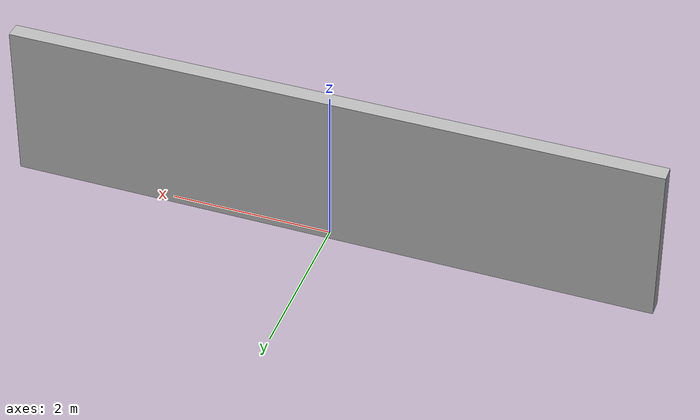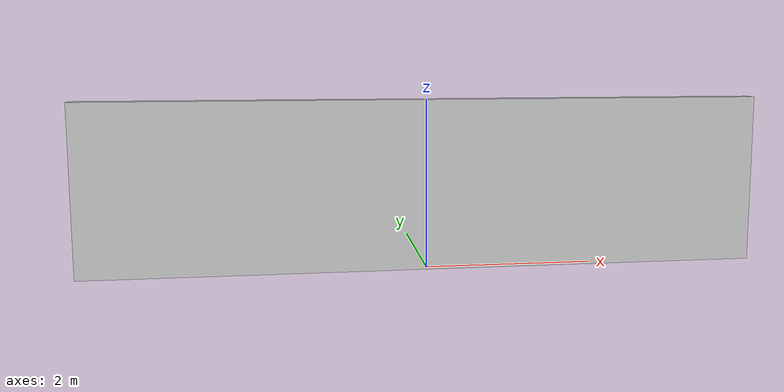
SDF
<?xml version="1.0"?>
<sdf version="1.10">
  <model name="wall_8m">
    <static>true</static>
    <link name="wall_link">
      <visual name="wall_visual">
        <geometry>
          <mesh>
            <uri>model://wall_8m/meshes/wall_8m.dae</uri>
          </mesh>
        </geometry>
      </visual>

      <collision name="wall_collision">
        <pose>0 0 1 0 0 0</pose>
        <geometry>
          <box>
            <size>8 0.2 2</size>
          </box>
        </geometry>
      </collision>
    </link>
  </model>
</sdf>
